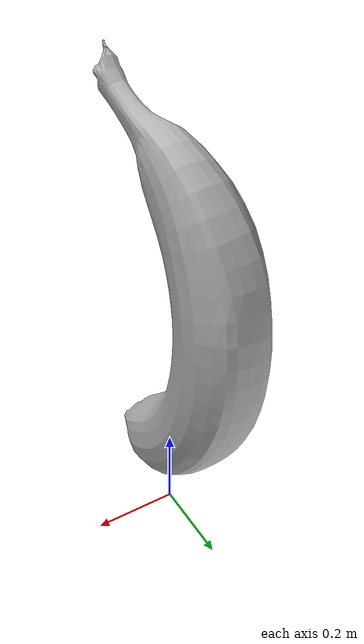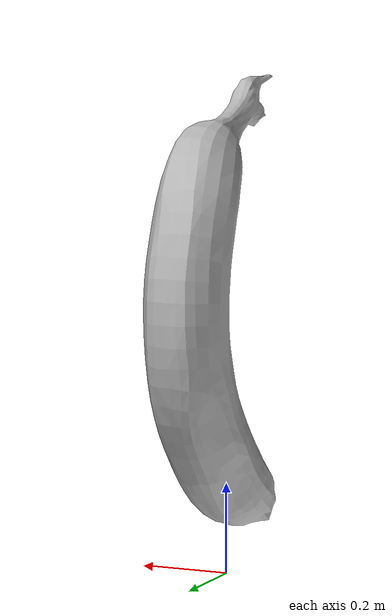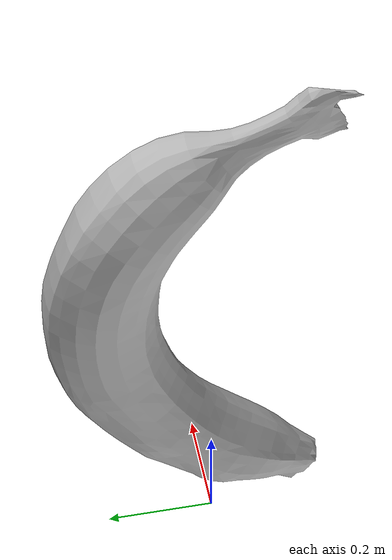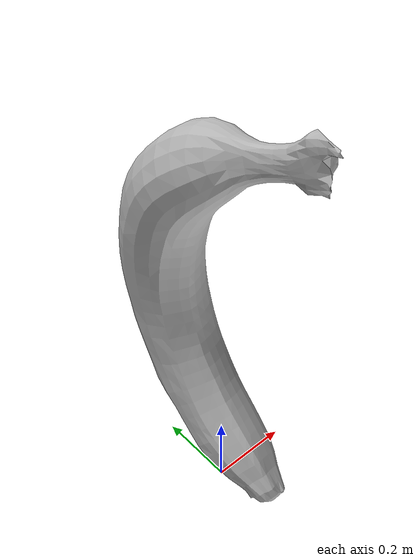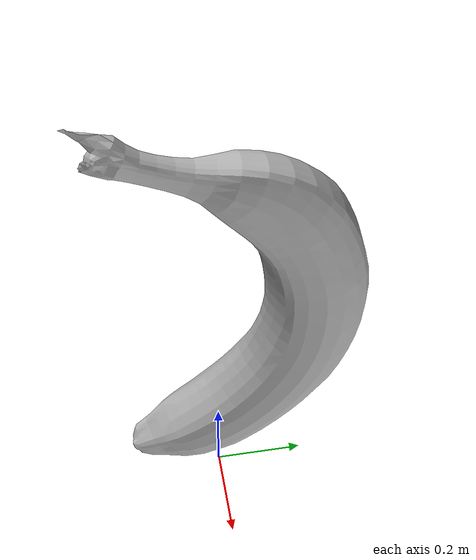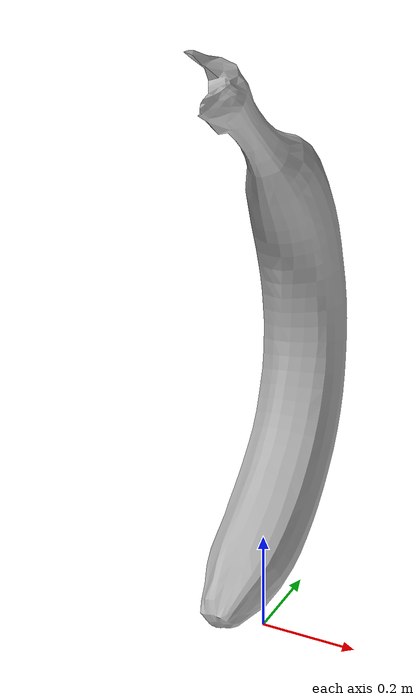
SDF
<?xml version='1.0' ?>
<sdf version="1.6">
    <model name="Big Banana for Scale">
        <static>true</static>
        <link name="link">
            <collision name="collision">
                <pose>0 0 0.6 0 0 1.5708</pose>
                <geometry>
                    <mesh>
                        <uri>meshes/Banana.dae</uri>
                    </mesh>
                </geometry>
            </collision>
            <visual name="visual">
                <pose>0 0 0.6 0 0 1.5708</pose>
                <geometry>
                    <mesh>
                        <uri>meshes/Banana.dae</uri>
                    </mesh>
                </geometry>
            </visual>
        </link>
    </model>
</sdf>
